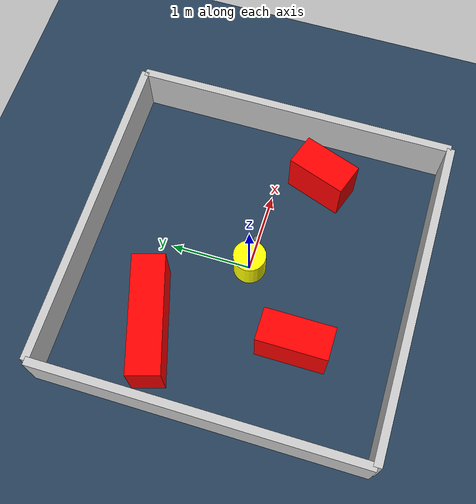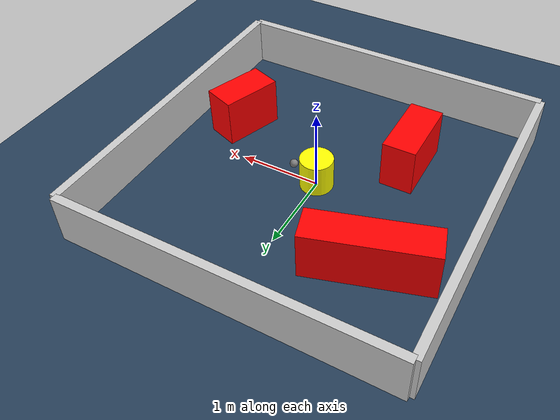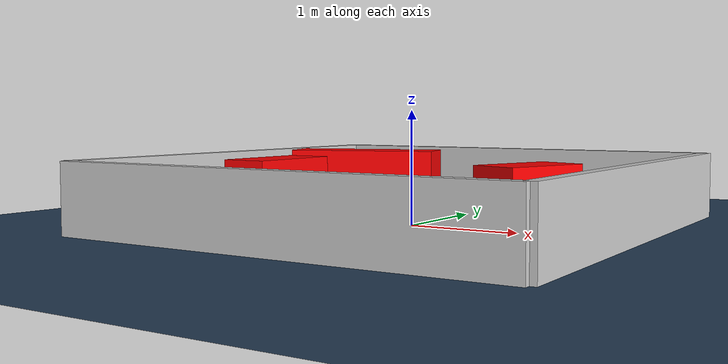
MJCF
<?xml version="1.0" ?>
<mujoco model="generated_environment">
  <option timestep="0.01" integrator="RK4" cone="elliptic"/>
  <default>
    <geom density="1"/>
  </default>
  <asset>
    <texture builtin="gradient" height="3072" rgb1="0.3 0.5 0.7" rgb2="0 0 0" type="skybox" width="512"/>
    <texture builtin="checker" height="300" mark="edge" markrgb="0.8 0.8 0.8" name="groundplane" rgb1="0.2 0.3 0.4" rgb2="0.1 0.2 0.3" type="2d" width="300"/>
    <material name="groundplane" reflectance="0.2" texrepeat="5 5" texture="groundplane" texuniform="true"/>
    <material name="robot" rgba="0.0 1.0 0.0 1"/>
  </asset>
  <worldbody>
    <light dir="0 0 -1" directional="true" pos="0 0 1.5"/>
    <geom condim="4" friction="1.0 0.005 0.001" material="groundplane" name="floor" size="0 0 0.05" type="plane"/>
    <body name="walls">
      <geom name="wall_1" condim="4" pos="-2.0 0.0 0.3" rgba="0.800000011920929 0.800000011920929 0.800000011920929 1.0" size="0.05 2.0 0.3" type="box"/>
      <geom name="wall_2" condim="4" pos="2.0 0.0 0.3" rgba="0.800000011920929 0.800000011920929 0.800000011920929 1.0" size="0.05 2.0 0.3" type="box"/>
      <geom name="wall_3" condim="4" pos="0.0 -2.0 0.3" rgba="0.800000011920929 0.800000011920929 0.800000011920929 1.0" size="2.0 0.05 0.3" type="box"/>
      <geom name="wall_4" condim="4" pos="0.0 2.0 0.3" rgba="0.800000011920929 0.800000011920929 0.800000011920929 1.0" size="2.0 0.05 0.3" type="box"/>
    </body>
    <body name="robot">
      <joint name="joint_x" type="slide" pos="0 0 0" axis="1 0 0"/>
      <joint name="joint_y" type="slide" pos="0 0 0" axis="0 1 0"/>
      <geom name="robot" type="sphere" pos="0.3 0.0 0.2" size="0.05" mass="5." friction="1.0 0.005 0.0001" condim="4" rgba="0.5 0.5 0.5 1.0"/>
      <site name="sensor_ball"/>
    </body>
    <body name="obstacle_movable_1">
      <geom name="obstacle_movable_1" condim="4" pos="0.0 0.0 0.2" euler="0 0 0.0" friction="1.0 0.005 0.001" rgba="1.0 1.0 0.0 1.0" size="0.2 0.2 0.0" type="cylinder" mass="0.1"/>
      <joint type="free"/>
    </body>
    <body name="obstacle_2_static">
      <geom name="obstacle_2_static" condim="4" pos="-1.091994223771265 0.9000964782060434 0.3" euler="0 0 16.814588379993125" friction="1.0 0.005 0.001" rgba="1 0 0 1" size="0.7234128977985503 0.2 0.3" type="box"/>
    </body>
    <body name="obstacle_3_static">
      <geom name="obstacle_3_static" condim="4" pos="1.3439489932806468 -0.5552397363443182 0.3" euler="0 0 250.7229925231684" friction="1.0 0.005 0.001" rgba="1 0 0 1" size="0.3698537442989073 0.2 0.3" type="box"/>
    </body>
    <body name="obstacle_4_static">
      <geom name="obstacle_4_static" condim="4" pos="-0.8390886660684125 -0.7919045432468796 0.3" euler="0 0 269.9779004067058" friction="1.0 0.005 0.001" rgba="1 0 0 1" size="0.4267568134226132 0.2 0.3" type="box"/>
    </body>
  </worldbody>
  <actuator>
    <motor name="actuator_x" joint="joint_x" gear="1" ctrlrange="-1 1"/>
    <motor name="actuator_y" joint="joint_y" gear="1" ctrlrange="-1 1"/>
  </actuator>
</mujoco>
